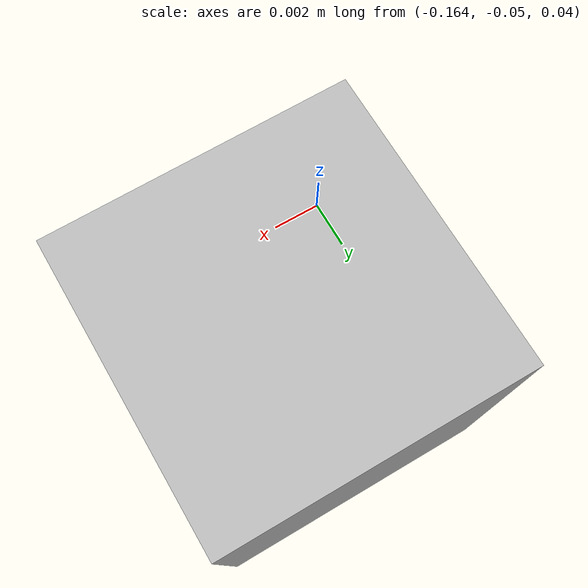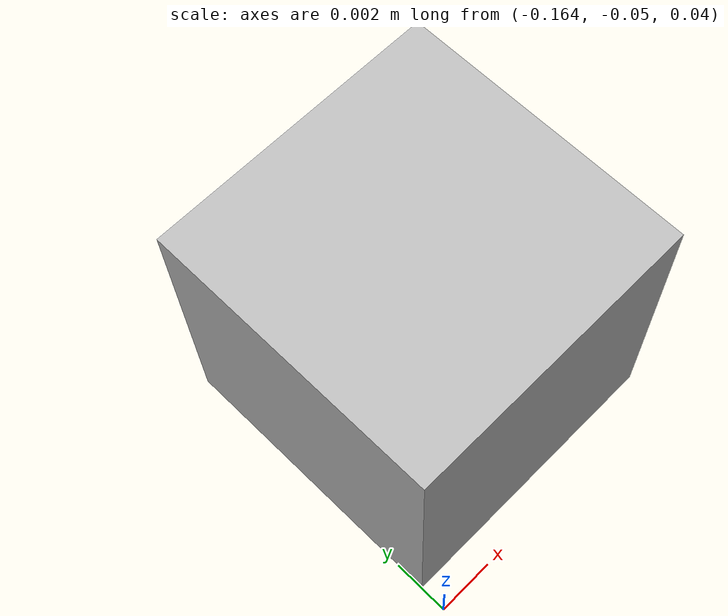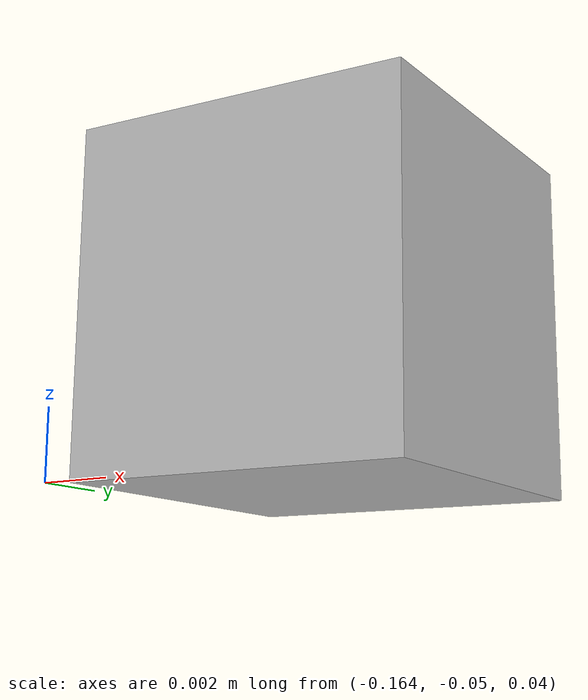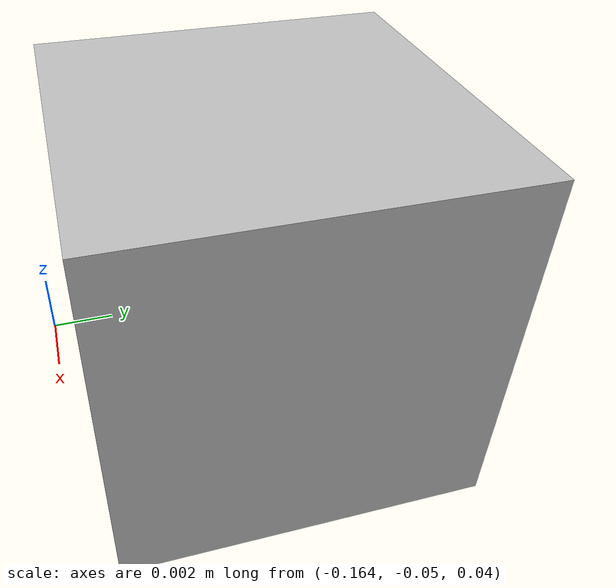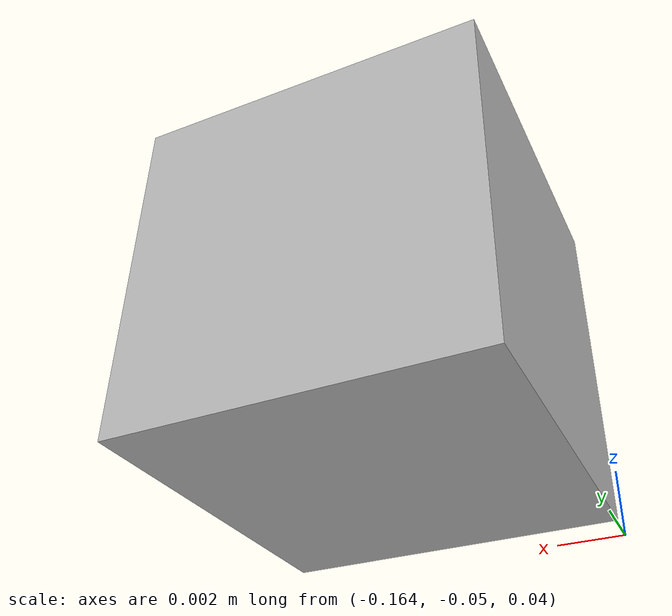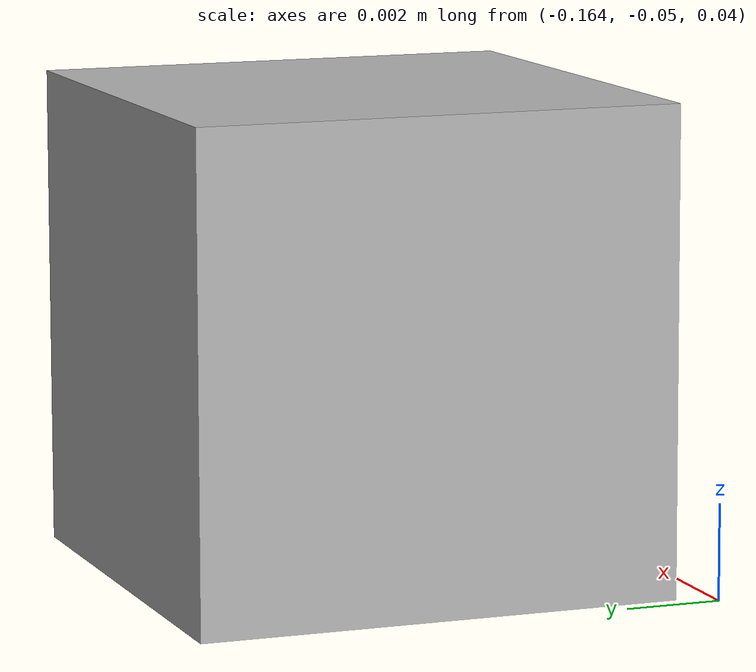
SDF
<?xml version="1.0"?>
<sdf version="1.5">
  <model name="camera">
    <pose>-0.158979 -0.04405 0.045074 0 1.578 0</pose>
    <link name='link'>
      <inertial>
        <mass>0.015</mass>
        <inertia>
          <ixx>4.15e-6</ixx>
          <ixy>0</ixy>
          <ixz>0</ixz>
          <iyy>2.407e-6</iyy>
          <iyz>0</iyz>
          <izz>2.407e-6</izz>
        </inertia>
      </inertial>
      <collision name='collision'>
        <geometry>
          <box>
            <size>0.01 0.01 0.01</size>
          </box>
        </geometry>
        <max_contacts>10</max_contacts>
        <surface>
          <contact>
            <ode/>
          </contact>
          <bounce/>
          <friction>
            <ode/>
          </friction>
        </surface>
      </collision>
      <visual name='visual'>
        <geometry>
          <box>
            <size>0.01 0.01 0.01</size>
          </box>
        </geometry>
      </visual>
      <sensor type="camera" name="sensor_name">
        <always_on>1</always_on>
        <visualize>true</visualize>
        <update_rate>10</update_rate>
        <camera name="head">
          <horizontal_fov>1.0236</horizontal_fov>
          <image>

            <width>640</width>
            <height>480</height>
          </image>
          <clip>
            <near>0.1</near>
            <far>100</far>
          </clip>
        </camera>
        <plugin name="camera_controller" filename="libgazebo_ros_camera.so">
          <camera_name>camera</camera_name>
          <frame_name>camera_link_optical</frame_name>
        </plugin>
      </sensor>
    </link>
  </model>
</sdf>
